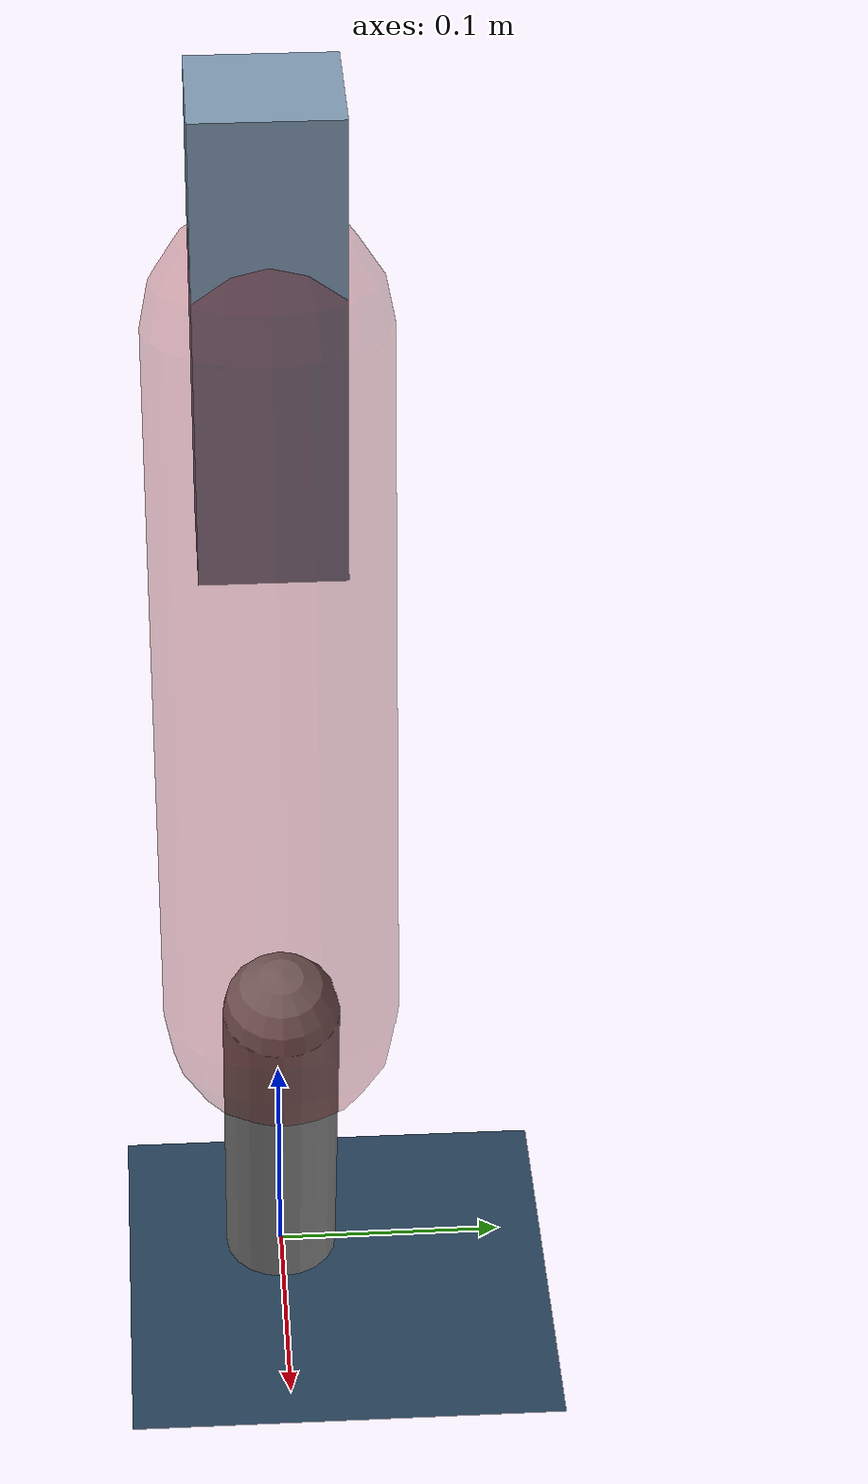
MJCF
<mujoco model="Hopper2D">
	<compiler inertiafromgeom="true" angle="radian" />
	<option timestep="0.001" integrator="implicit" cone="elliptic" solver="Newton" tolerance="1e-10" />

	<default>
		<geom contype="1" conaffinity="1" condim="3" friction="2 0.005 0.0001" solref="0.005 1" />
		<joint limited="true" damping="0.1" />
	</default>

	<asset>
		<texture name="skybox" type="skybox" builtin="gradient" rgb1=".4 .6 .8" rgb2="0 0 0" width="800" height="800" />
		<texture name="grid" type="2d" builtin="checker" rgb1=".1 .2 .3" rgb2=".2 .3 .4" width="300" height="300" mark="edge" markrgb=".2 .3 .4" />
		<material name="ground" texture="grid" texrepeat="1 1" texuniform="true" reflectance="0.1" />
		<material name="leg" rgba="0.5 0.6 0.7 1" />
	</asset>

	<worldbody>

		<geom name="floor" type="plane" size="5 5 0.25" material="ground" />

		<light directional="false" diffuse="0.8 0.8 0.8" specular="0.3 0.3 0.3" pos="0 0 2" dir="0 0 -1" />
		<light mode="targetbodycom" target="base" directional="false" diffuse="0.8 0.8 0.8" specular="0.3 0.3 0.3" pos="0 0 2" dir="0 0 -1" />

		<camera name="fixed" pos="0 -2 1" xyaxes="1 0 0 0 0 1" />
		<camera name="tracking" mode="trackcom" pos="0 -3 1" />

		<body name="root" pos="0 0 0.4754089144925022">
			<joint name="slide_x" type="slide" axis="1 0 0" range="-100 100" />
			<joint name="slide_z" type="slide" axis="0 0 1" range="0 10" />

			<body name="base" pos="0 0 0">
				<geom name="torso" type="box" size="0.03 0.03 0.1" mass="3.189" material="leg" />

				<body name="link1" pos="0 0 0" euler="0 1.4167323385373227 0">
					<joint type="hinge" axis="0 -1 0" pos="0 0 0" name="hinge1" limited="true" range="-3.14 3.14" stiffness="0" damping="0.1" />
					<geom name="thigh" type="capsule" fromto="0 0 0 0.30734499149147554 0 0" size="0.05" rgba="0.5 0 0 0.3" mass="1.008631477026984" />

					<body name="link2" pos="0.30734499149147554 0 0" euler="0 0.4221325606078066 0">
						<joint type="hinge" axis="0 -1 0" pos="0 0 0" name="hinge2" limited="true" range="-3.14 3.14" stiffness="0" damping="0.1" />
						<geom name="shank" type="capsule" fromto="0 0 0 0.17806392300102672 0 0" size="0.025" mass="0.38225113840082137" />

					</body>
				</body>
			</body>
		</body>
	</worldbody>

	<actuator>
		<motor name="torque1" joint="hinge1" ctrlrange="-126.80959859385209 126.80959859385209" ctrllimited="true" gear="1" />
		<motor name="torque2" joint="hinge2" ctrlrange="-98.9241114963214 98.9241114963214" ctrllimited="true" gear="1" />
	</actuator>
</mujoco>
